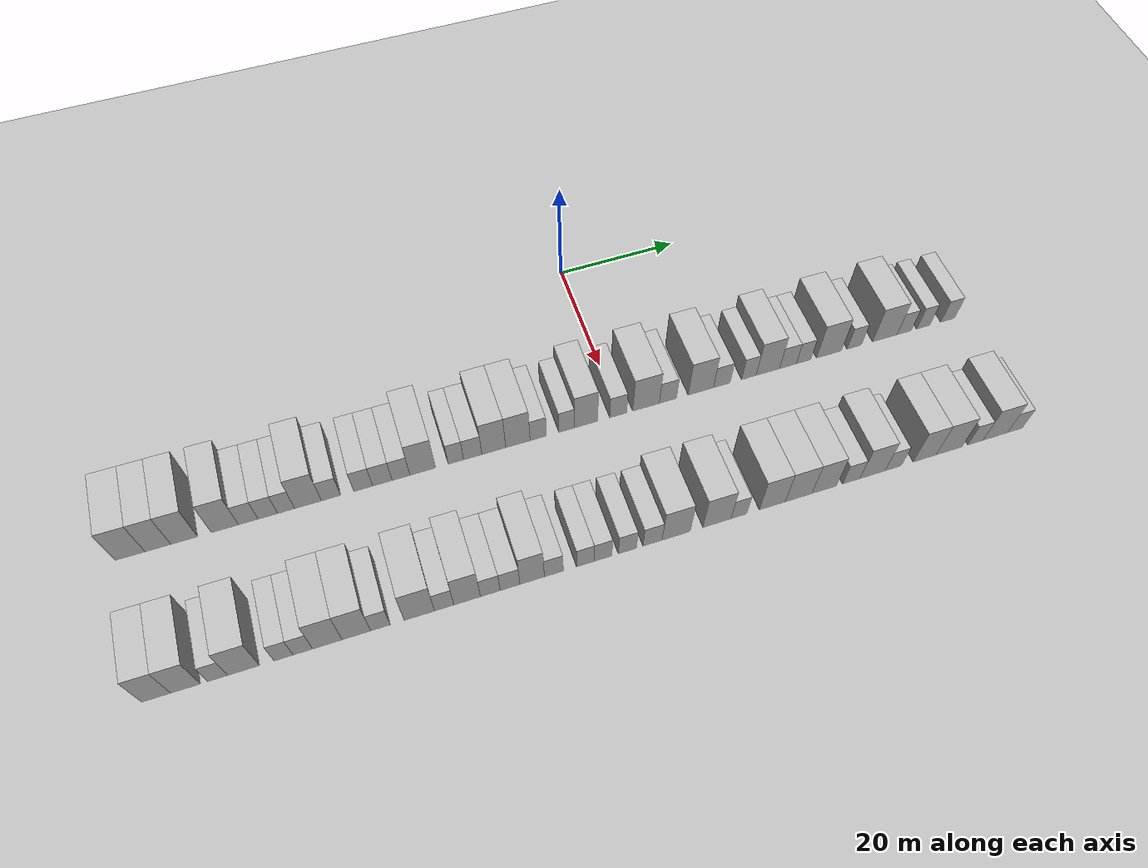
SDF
<sdf version="1.6">
 <world name="default">
  <include><name>ground_plane_1</name><uri>model://HANNAS_ground_plane</uri></include>
  <include>
   <name>ground_plane_2</name>
   <uri>model://HANNAS_ground_plane</uri>
   <pose>100 0 0  0 0 0</pose>
  </include>
  <model name="building_34">
   <static>1</static>
   <pose>25.0000 -75.3011 0 0.000000 0.000000 0.000000</pose>
   <link name="link">
    <pose>0 0 4.50 0 0 0</pose>
    <collision name="collision"><geometry><box><size>10.0000 4.2464 9.0000</size></box></geometry></collision>
    <visual name="visual">
     <cast_shadows>0</cast_shadows>
     <geometry><box><size>10.0000 4.2464 9.0000</size></box></geometry>
     <material>
      <script>
       <uri>model://HANNAS_wall/materials/scripts</uri>
       <uri>model://HANNAS_wall/materials/textures</uri>
       <name>vrc/HANNAS_wall</name>
      </script>
     </material>
    </visual>
   </link>
  </model>
  <model name="building_35">
   <static>1</static>
   <pose>25.0000 -71.3267 0 0.000000 0.000000 0.000000</pose>
   <link name="link">
    <pose>0 0 4.50 0 0 0</pose>
    <collision name="collision"><geometry><box><size>10.0000 3.7024 9.0000</size></box></geometry></collision>
    <visual name="visual">
     <cast_shadows>0</cast_shadows>
     <geometry><box><size>10.0000 3.7024 9.0000</size></box></geometry>
     <material>
      <script>
       <uri>model://HANNAS_wall/materials/scripts</uri>
       <uri>model://HANNAS_wall/materials/textures</uri>
       <name>vrc/HANNAS_wall</name>
      </script>
     </material>
    </visual>
   </link>
  </model>
  <model name="building_36">
   <static>1</static>
   <pose>25.0000 -67.5447 0 0.000000 0.000000 0.000000</pose>
   <link name="link">
    <pose>0 0 4.50 0 0 0</pose>
    <collision name="collision"><geometry><box><size>10.0000 3.8614 9.0000</size></box></geometry></collision>
    <visual name="visual">
     <cast_shadows>0</cast_shadows>
     <geometry><box><size>10.0000 3.8614 9.0000</size></box></geometry>
     <material>
      <script>
       <uri>model://HANNAS_wall/materials/scripts</uri>
       <uri>model://HANNAS_wall/materials/textures</uri>
       <name>vrc/HANNAS_wall</name>
      </script>
     </material>
    </visual>
   </link>
  </model>
  <model name="building_37">
   <static>1</static>
   <pose>25.0000 -61.6265 0 0.000000 0.000000 0.000000</pose>
   <link name="link">
    <pose>0 0 4.50 0 0 0</pose>
    <collision name="collision"><geometry><box><size>10.0000 3.9751 9.0000</size></box></geometry></collision>
    <visual name="visual">
     <cast_shadows>0</cast_shadows>
     <geometry><box><size>10.0000 3.9751 9.0000</size></box></geometry>
     <material>
      <script>
       <uri>model://HANNAS_wall/materials/scripts</uri>
       <uri>model://HANNAS_wall/materials/textures</uri>
       <name>vrc/HANNAS_wall</name>
      </script>
     </material>
    </visual>
   </link>
  </model>
  <model name="building_38">
   <static>1</static>
   <pose>25.0000 -58.1998 0 0.000000 0.000000 0.000000</pose>
   <link name="link">
    <pose>0 0 3.00 0 0 0</pose>
    <collision name="collision"><geometry><box><size>10.0000 2.8782 6.0000</size></box></geometry></collision>
    <visual name="visual">
     <cast_shadows>0</cast_shadows>
     <geometry><box><size>10.0000 2.8782 6.0000</size></box></geometry>
     <material>
      <script>
       <uri>model://HANNAS_wall/materials/scripts</uri>
       <uri>model://HANNAS_wall/materials/textures</uri>
       <name>vrc/HANNAS_wall</name>
      </script>
     </material>
    </visual>
   </link>
  </model>
  <model name="building_39">
   <static>1</static>
   <pose>25.0000 -55.3088 0 0.000000 0.000000 0.000000</pose>
   <link name="link">
    <pose>0 0 3.00 0 0 0</pose>
    <collision name="collision"><geometry><box><size>10.0000 2.9037 6.0000</size></box></geometry></collision>
    <visual name="visual">
     <cast_shadows>0</cast_shadows>
     <geometry><box><size>10.0000 2.9037 6.0000</size></box></geometry>
     <material>
      <script>
       <uri>model://HANNAS_wall/materials/scripts</uri>
       <uri>model://HANNAS_wall/materials/textures</uri>
       <name>vrc/HANNAS_wall</name>
      </script>
     </material>
    </visual>
   </link>
  </model>
  <model name="building_40">
   <static>1</static>
   <pose>25.0000 -52.5895 0 0.000000 0.000000 0.000000</pose>
   <link name="link">
    <pose>0 0 3.00 0 0 0</pose>
    <collision name="collision"><geometry><box><size>10.0000 2.5350 6.0000</size></box></geometry></collision>
    <visual name="visual">
     <cast_shadows>0</cast_shadows>
     <geometry><box><size>10.0000 2.5350 6.0000</size></box></geometry>
     <material>
      <script>
       <uri>model://HANNAS_wall/materials/scripts</uri>
       <uri>model://HANNAS_wall/materials/textures</uri>
       <name>vrc/HANNAS_wall</name>
      </script>
     </material>
    </visual>
   </link>
  </model>
  <model name="building_41">
   <static>1</static>
   <pose>25.0000 -49.3044 0 0.000000 0.000000 0.000000</pose>
   <link name="link">
    <pose>0 0 4.50 0 0 0</pose>
    <collision name="collision"><geometry><box><size>10.0000 4.0352 9.0000</size></box></geometry></collision>
    <visual name="visual">
     <cast_shadows>0</cast_shadows>
     <geometry><box><size>10.0000 4.0352 9.0000</size></box></geometry>
     <material>
      <script>
       <uri>model://HANNAS_wall/materials/scripts</uri>
       <uri>model://HANNAS_wall/materials/textures</uri>
       <name>vrc/HANNAS_wall</name>
      </script>
     </material>
    </visual>
   </link>
  </model>
  <model name="building_42">
   <static>1</static>
   <pose>25.0000 -45.8358 0 0.000000 0.000000 0.000000</pose>
   <link name="link">
    <pose>0 0 3.00 0 0 0</pose>
    <collision name="collision"><geometry><box><size>10.0000 2.9020 6.0000</size></box></geometry></collision>
    <visual name="visual">
     <cast_shadows>0</cast_shadows>
     <geometry><box><size>10.0000 2.9020 6.0000</size></box></geometry>
     <material>
      <script>
       <uri>model://HANNAS_wall/materials/scripts</uri>
       <uri>model://HANNAS_wall/materials/textures</uri>
       <name>vrc/HANNAS_wall</name>
      </script>
     </material>
    </visual>
   </link>
  </model>
  <model name="building_43">
   <static>1</static>
   <pose>25.0000 -40.9486 0 0.000000 0.000000 0.000000</pose>
   <link name="link">
    <pose>0 0 3.00 0 0 0</pose>
    <collision name="collision"><geometry><box><size>10.0000 2.8724 6.0000</size></box></geometry></collision>
    <visual name="visual">
     <cast_shadows>0</cast_shadows>
     <geometry><box><size>10.0000 2.8724 6.0000</size></box></geometry>
     <material>
      <script>
       <uri>model://HANNAS_wall/materials/scripts</uri>
       <uri>model://HANNAS_wall/materials/textures</uri>
       <name>vrc/HANNAS_wall</name>
      </script>
     </material>
    </visual>
   </link>
  </model>
  <model name="building_44">
   <static>1</static>
   <pose>25.0000 -38.0196 0 0.000000 0.000000 0.000000</pose>
   <link name="link">
    <pose>0 0 3.00 0 0 0</pose>
    <collision name="collision"><geometry><box><size>10.0000 2.9856 6.0000</size></box></geometry></collision>
    <visual name="visual">
     <cast_shadows>0</cast_shadows>
     <geometry><box><size>10.0000 2.9856 6.0000</size></box></geometry>
     <material>
      <script>
       <uri>model://HANNAS_wall/materials/scripts</uri>
       <uri>model://HANNAS_wall/materials/textures</uri>
       <name>vrc/HANNAS_wall</name>
      </script>
     </material>
    </visual>
   </link>
  </model>
  <model name="building_45">
   <static>1</static>
   <pose>25.0000 -35.1479 0 0.000000 0.000000 0.000000</pose>
   <link name="link">
    <pose>0 0 3.00 0 0 0</pose>
    <collision name="collision"><geometry><box><size>10.0000 2.7579 6.0000</size></box></geometry></collision>
    <visual name="visual">
     <cast_shadows>0</cast_shadows>
     <geometry><box><size>10.0000 2.7579 6.0000</size></box></geometry>
     <material>
      <script>
       <uri>model://HANNAS_wall/materials/scripts</uri>
       <uri>model://HANNAS_wall/materials/textures</uri>
       <name>vrc/HANNAS_wall</name>
      </script>
     </material>
    </visual>
   </link>
  </model>
  <model name="building_46">
   <static>1</static>
   <pose>25.0000 -31.7812 0 0.000000 0.000000 0.000000</pose>
   <link name="link">
    <pose>0 0 4.50 0 0 0</pose>
    <collision name="collision"><geometry><box><size>10.0000 3.9755 9.0000</size></box></geometry></collision>
    <visual name="visual">
     <cast_shadows>0</cast_shadows>
     <geometry><box><size>10.0000 3.9755 9.0000</size></box></geometry>
     <material>
      <script>
       <uri>model://HANNAS_wall/materials/scripts</uri>
       <uri>model://HANNAS_wall/materials/textures</uri>
       <name>vrc/HANNAS_wall</name>
      </script>
     </material>
    </visual>
   </link>
  </model>
  <model name="building_47">
   <static>1</static>
   <pose>25.0000 -26.5902 0 0.000000 0.000000 0.000000</pose>
   <link name="link">
    <pose>0 0 3.00 0 0 0</pose>
    <collision name="collision"><geometry><box><size>10.0000 2.4067 6.0000</size></box></geometry></collision>
    <visual name="visual">
     <cast_shadows>0</cast_shadows>
     <geometry><box><size>10.0000 2.4067 6.0000</size></box></geometry>
     <material>
      <script>
       <uri>model://HANNAS_wall/materials/scripts</uri>
       <uri>model://HANNAS_wall/materials/textures</uri>
       <name>vrc/HANNAS_wall</name>
      </script>
     </material>
    </visual>
   </link>
  </model>
  <model name="building_48">
   <static>1</static>
   <pose>25.0000 -23.9397 0 0.000000 0.000000 0.000000</pose>
   <link name="link">
    <pose>0 0 3.00 0 0 0</pose>
    <collision name="collision"><geometry><box><size>10.0000 2.8944 6.0000</size></box></geometry></collision>
    <visual name="visual">
     <cast_shadows>0</cast_shadows>
     <geometry><box><size>10.0000 2.8944 6.0000</size></box></geometry>
     <material>
      <script>
       <uri>model://HANNAS_wall/materials/scripts</uri>
       <uri>model://HANNAS_wall/materials/textures</uri>
       <name>vrc/HANNAS_wall</name>
      </script>
     </material>
    </visual>
   </link>
  </model>
  <model name="building_49">
   <static>1</static>
   <pose>25.0000 -20.5937 0 0.000000 0.000000 0.000000</pose>
   <link name="link">
    <pose>0 0 4.50 0 0 0</pose>
    <collision name="collision"><geometry><box><size>10.0000 3.7975 9.0000</size></box></geometry></collision>
    <visual name="visual">
     <cast_shadows>0</cast_shadows>
     <geometry><box><size>10.0000 3.7975 9.0000</size></box></geometry>
     <material>
      <script>
       <uri>model://HANNAS_wall/materials/scripts</uri>
       <uri>model://HANNAS_wall/materials/textures</uri>
       <name>vrc/HANNAS_wall</name>
      </script>
     </material>
    </visual>
   </link>
  </model>
  <model name="building_50">
   <static>1</static>
   <pose>25.0000 -16.7432 0 0.000000 0.000000 0.000000</pose>
   <link name="link">
    <pose>0 0 4.50 0 0 0</pose>
    <collision name="collision"><geometry><box><size>10.0000 3.9035 9.0000</size></box></geometry></collision>
    <visual name="visual">
     <cast_shadows>0</cast_shadows>
     <geometry><box><size>10.0000 3.9035 9.0000</size></box></geometry>
     <material>
      <script>
       <uri>model://HANNAS_wall/materials/scripts</uri>
       <uri>model://HANNAS_wall/materials/textures</uri>
       <name>vrc/HANNAS_wall</name>
      </script>
     </material>
    </visual>
   </link>
  </model>
  <model name="building_51">
   <static>1</static>
   <pose>25.0000 -13.4759 0 0.000000 0.000000 0.000000</pose>
   <link name="link">
    <pose>0 0 3.00 0 0 0</pose>
    <collision name="collision"><geometry><box><size>10.0000 2.6311 6.0000</size></box></geometry></collision>
    <visual name="visual">
     <cast_shadows>0</cast_shadows>
     <geometry><box><size>10.0000 2.6311 6.0000</size></box></geometry>
     <material>
      <script>
       <uri>model://HANNAS_wall/materials/scripts</uri>
       <uri>model://HANNAS_wall/materials/textures</uri>
       <name>vrc/HANNAS_wall</name>
      </script>
     </material>
    </visual>
   </link>
  </model>
  <model name="building_52">
   <static>1</static>
   <pose>25.0000 -8.8970 0 0.000000 0.000000 0.000000</pose>
   <link name="link">
    <pose>0 0 3.00 0 0 0</pose>
    <collision name="collision"><geometry><box><size>10.0000 2.5266 6.0000</size></box></geometry></collision>
    <visual name="visual">
     <cast_shadows>0</cast_shadows>
     <geometry><box><size>10.0000 2.5266 6.0000</size></box></geometry>
     <material>
      <script>
       <uri>model://HANNAS_wall/materials/scripts</uri>
       <uri>model://HANNAS_wall/materials/textures</uri>
       <name>vrc/HANNAS_wall</name>
      </script>
     </material>
    </visual>
   </link>
  </model>
  <model name="building_53">
   <static>1</static>
   <pose>25.0000 -5.7315 0 0.000000 0.000000 0.000000</pose>
   <link name="link">
    <pose>0 0 4.50 0 0 0</pose>
    <collision name="collision"><geometry><box><size>10.0000 3.8044 9.0000</size></box></geometry></collision>
    <visual name="visual">
     <cast_shadows>0</cast_shadows>
     <geometry><box><size>10.0000 3.8044 9.0000</size></box></geometry>
     <material>
      <script>
       <uri>model://HANNAS_wall/materials/scripts</uri>
       <uri>model://HANNAS_wall/materials/textures</uri>
       <name>vrc/HANNAS_wall</name>
      </script>
     </material>
    </visual>
   </link>
  </model>
  <model name="building_54">
   <static>1</static>
   <pose>25.0000 -0.4231 0 0.000000 0.000000 0.000000</pose>
   <link name="link">
    <pose>0 0 3.00 0 0 0</pose>
    <collision name="collision"><geometry><box><size>10.0000 2.8125 6.0000</size></box></geometry></collision>
    <visual name="visual">
     <cast_shadows>0</cast_shadows>
     <geometry><box><size>10.0000 2.8125 6.0000</size></box></geometry>
     <material>
      <script>
       <uri>model://HANNAS_wall/materials/scripts</uri>
       <uri>model://HANNAS_wall/materials/textures</uri>
       <name>vrc/HANNAS_wall</name>
      </script>
     </material>
    </visual>
   </link>
  </model>
  <model name="building_55">
   <static>1</static>
   <pose>25.0000 4.2093 0 0.000000 0.000000 0.000000</pose>
   <link name="link">
    <pose>0 0 4.50 0 0 0</pose>
    <collision name="collision"><geometry><box><size>10.0000 4.4522 9.0000</size></box></geometry></collision>
    <visual name="visual">
     <cast_shadows>0</cast_shadows>
     <geometry><box><size>10.0000 4.4522 9.0000</size></box></geometry>
     <material>
      <script>
       <uri>model://HANNAS_wall/materials/scripts</uri>
       <uri>model://HANNAS_wall/materials/textures</uri>
       <name>vrc/HANNAS_wall</name>
      </script>
     </material>
    </visual>
   </link>
  </model>
  <model name="building_56">
   <static>1</static>
   <pose>25.0000 7.8749 0 0.000000 0.000000 0.000000</pose>
   <link name="link">
    <pose>0 0 3.00 0 0 0</pose>
    <collision name="collision"><geometry><box><size>10.0000 2.8789 6.0000</size></box></geometry></collision>
    <visual name="visual">
     <cast_shadows>0</cast_shadows>
     <geometry><box><size>10.0000 2.8789 6.0000</size></box></geometry>
     <material>
      <script>
       <uri>model://HANNAS_wall/materials/scripts</uri>
       <uri>model://HANNAS_wall/materials/textures</uri>
       <name>vrc/HANNAS_wall</name>
      </script>
     </material>
    </visual>
   </link>
  </model>
  <model name="building_57">
   <static>1</static>
   <pose>25.0000 13.4722 0 0.000000 0.000000 0.000000</pose>
   <link name="link">
    <pose>0 0 4.50 0 0 0</pose>
    <collision name="collision"><geometry><box><size>10.0000 4.3157 9.0000</size></box></geometry></collision>
    <visual name="visual">
     <cast_shadows>0</cast_shadows>
     <geometry><box><size>10.0000 4.3157 9.0000</size></box></geometry>
     <material>
      <script>
       <uri>model://HANNAS_wall/materials/scripts</uri>
       <uri>model://HANNAS_wall/materials/textures</uri>
       <name>vrc/HANNAS_wall</name>
      </script>
     </material>
    </visual>
   </link>
  </model>
  <model name="building_58">
   <static>1</static>
   <pose>25.0000 17.0487 0 0.000000 0.000000 0.000000</pose>
   <link name="link">
    <pose>0 0 3.00 0 0 0</pose>
    <collision name="collision"><geometry><box><size>10.0000 2.8374 6.0000</size></box></geometry></collision>
    <visual name="visual">
     <cast_shadows>0</cast_shadows>
     <geometry><box><size>10.0000 2.8374 6.0000</size></box></geometry>
     <material>
      <script>
       <uri>model://HANNAS_wall/materials/scripts</uri>
       <uri>model://HANNAS_wall/materials/textures</uri>
       <name>vrc/HANNAS_wall</name>
      </script>
     </material>
    </visual>
   </link>
  </model>
  <model name="building_59">
   <static>1</static>
   <pose>25.0000 21.7170 0 0.000000 0.000000 0.000000</pose>
   <link name="link">
    <pose>0 0 3.00 0 0 0</pose>
    <collision name="collision"><geometry><box><size>10.0000 2.4991 6.0000</size></box></geometry></collision>
    <visual name="visual">
     <cast_shadows>0</cast_shadows>
     <geometry><box><size>10.0000 2.4991 6.0000</size></box></geometry>
     <material>
      <script>
       <uri>model://HANNAS_wall/materials/scripts</uri>
       <uri>model://HANNAS_wall/materials/textures</uri>
       <name>vrc/HANNAS_wall</name>
      </script>
     </material>
    </visual>
   </link>
  </model>
  <model name="building_60">
   <static>1</static>
   <pose>25.0000 25.0026 0 0.000000 0.000000 0.000000</pose>
   <link name="link">
    <pose>0 0 4.50 0 0 0</pose>
    <collision name="collision"><geometry><box><size>10.0000 4.0722 9.0000</size></box></geometry></collision>
    <visual name="visual">
     <cast_shadows>0</cast_shadows>
     <geometry><box><size>10.0000 4.0722 9.0000</size></box></geometry>
     <material>
      <script>
       <uri>model://HANNAS_wall/materials/scripts</uri>
       <uri>model://HANNAS_wall/materials/textures</uri>
       <name>vrc/HANNAS_wall</name>
      </script>
     </material>
    </visual>
   </link>
  </model>
  <model name="building_61">
   <static>1</static>
   <pose>25.0000 28.5138 0 0.000000 0.000000 0.000000</pose>
   <link name="link">
    <pose>0 0 3.00 0 0 0</pose>
    <collision name="collision"><geometry><box><size>10.0000 2.9501 6.0000</size></box></geometry></collision>
    <visual name="visual">
     <cast_shadows>0</cast_shadows>
     <geometry><box><size>10.0000 2.9501 6.0000</size></box></geometry>
     <material>
      <script>
       <uri>model://HANNAS_wall/materials/scripts</uri>
       <uri>model://HANNAS_wall/materials/textures</uri>
       <name>vrc/HANNAS_wall</name>
      </script>
     </material>
    </visual>
   </link>
  </model>
  <model name="building_62">
   <static>1</static>
   <pose>25.0000 31.2584 0 0.000000 0.000000 0.000000</pose>
   <link name="link">
    <pose>0 0 3.00 0 0 0</pose>
    <collision name="collision"><geometry><box><size>10.0000 2.5391 6.0000</size></box></geometry></collision>
    <visual name="visual">
     <cast_shadows>0</cast_shadows>
     <geometry><box><size>10.0000 2.5391 6.0000</size></box></geometry>
     <material>
      <script>
       <uri>model://HANNAS_wall/materials/scripts</uri>
       <uri>model://HANNAS_wall/materials/textures</uri>
       <name>vrc/HANNAS_wall</name>
      </script>
     </material>
    </visual>
   </link>
  </model>
  <model name="building_63">
   <static>1</static>
   <pose>25.0000 35.7606 0 0.000000 0.000000 0.000000</pose>
   <link name="link">
    <pose>0 0 4.50 0 0 0</pose>
    <collision name="collision"><geometry><box><size>10.0000 4.4652 9.0000</size></box></geometry></collision>
    <visual name="visual">
     <cast_shadows>0</cast_shadows>
     <geometry><box><size>10.0000 4.4652 9.0000</size></box></geometry>
     <material>
      <script>
       <uri>model://HANNAS_wall/materials/scripts</uri>
       <uri>model://HANNAS_wall/materials/textures</uri>
       <name>vrc/HANNAS_wall</name>
      </script>
     </material>
    </visual>
   </link>
  </model>
  <model name="building_64">
   <static>1</static>
   <pose>25.0000 40.2761 0 0.000000 0.000000 0.000000</pose>
   <link name="link">
    <pose>0 0 3.00 0 0 0</pose>
    <collision name="collision"><geometry><box><size>10.0000 2.5658 6.0000</size></box></geometry></collision>
    <visual name="visual">
     <cast_shadows>0</cast_shadows>
     <geometry><box><size>10.0000 2.5658 6.0000</size></box></geometry>
     <material>
      <script>
       <uri>model://HANNAS_wall/materials/scripts</uri>
       <uri>model://HANNAS_wall/materials/textures</uri>
       <name>vrc/HANNAS_wall</name>
      </script>
     </material>
    </visual>
   </link>
  </model>
  <model name="building_65">
   <static>1</static>
   <pose>25.0000 45.7826 0 0.000000 0.000000 0.000000</pose>
   <link name="link">
    <pose>0 0 4.50 0 0 0</pose>
    <collision name="collision"><geometry><box><size>10.0000 4.4473 9.0000</size></box></geometry></collision>
    <visual name="visual">
     <cast_shadows>0</cast_shadows>
     <geometry><box><size>10.0000 4.4473 9.0000</size></box></geometry>
     <material>
      <script>
       <uri>model://HANNAS_wall/materials/scripts</uri>
       <uri>model://HANNAS_wall/materials/textures</uri>
       <name>vrc/HANNAS_wall</name>
      </script>
     </material>
    </visual>
   </link>
  </model>
  <model name="building_66">
   <static>1</static>
   <pose>25.0000 49.3003 0 0.000000 0.000000 0.000000</pose>
   <link name="link">
    <pose>0 0 3.00 0 0 0</pose>
    <collision name="collision"><geometry><box><size>10.0000 2.5882 6.0000</size></box></geometry></collision>
    <visual name="visual">
     <cast_shadows>0</cast_shadows>
     <geometry><box><size>10.0000 2.5882 6.0000</size></box></geometry>
     <material>
      <script>
       <uri>model://HANNAS_wall/materials/scripts</uri>
       <uri>model://HANNAS_wall/materials/textures</uri>
       <name>vrc/HANNAS_wall</name>
      </script>
     </material>
    </visual>
   </link>
  </model>
  <model name="building_67">
   <static>1</static>
   <pose>25.0000 52.7981 0 0.000000 0.000000 0.000000</pose>
   <link name="link">
    <pose>0 0 3.00 0 0 0</pose>
    <collision name="collision"><geometry><box><size>10.0000 2.4072 6.0000</size></box></geometry></collision>
    <visual name="visual">
     <cast_shadows>0</cast_shadows>
     <geometry><box><size>10.0000 2.4072 6.0000</size></box></geometry>
     <material>
      <script>
       <uri>model://HANNAS_wall/materials/scripts</uri>
       <uri>model://HANNAS_wall/materials/textures</uri>
       <name>vrc/HANNAS_wall</name>
      </script>
     </material>
    </visual>
   </link>
  </model>
  <model name="building_68">
   <static>1</static>
   <pose>25.0000 57.2887 0 0.000000 0.000000 0.000000</pose>
   <link name="link">
    <pose>0 0 3.00 0 0 0</pose>
    <collision name="collision"><geometry><box><size>10.0000 2.5740 6.0000</size></box></geometry></collision>
    <visual name="visual">
     <cast_shadows>0</cast_shadows>
     <geometry><box><size>10.0000 2.5740 6.0000</size></box></geometry>
     <material>
      <script>
       <uri>model://HANNAS_wall/materials/scripts</uri>
       <uri>model://HANNAS_wall/materials/textures</uri>
       <name>vrc/HANNAS_wall</name>
      </script>
     </material>
    </visual>
   </link>
  </model>
  <model name="building_143">
   <static>1</static>
   <pose>47.0000 -74.2604 0 0.000000 0.000000 0.000000</pose>
   <link name="link">
    <pose>0 0 4.50 0 0 0</pose>
    <collision name="collision"><geometry><box><size>10.0000 3.8609 9.0000</size></box></geometry></collision>
    <visual name="visual">
     <cast_shadows>0</cast_shadows>
     <geometry><box><size>10.0000 3.8609 9.0000</size></box></geometry>
     <material>
      <script>
       <uri>model://HANNAS_wall/materials/scripts</uri>
       <uri>model://HANNAS_wall/materials/textures</uri>
       <name>vrc/HANNAS_wall</name>
      </script>
     </material>
    </visual>
   </link>
  </model>
  <model name="building_144">
   <static>1</static>
   <pose>47.0000 -70.3363 0 0.000000 0.000000 0.000000</pose>
   <link name="link">
    <pose>0 0 4.50 0 0 0</pose>
    <collision name="collision"><geometry><box><size>10.0000 3.9872 9.0000</size></box></geometry></collision>
    <visual name="visual">
     <cast_shadows>0</cast_shadows>
     <geometry><box><size>10.0000 3.9872 9.0000</size></box></geometry>
     <material>
      <script>
       <uri>model://HANNAS_wall/materials/scripts</uri>
       <uri>model://HANNAS_wall/materials/textures</uri>
       <name>vrc/HANNAS_wall</name>
      </script>
     </material>
    </visual>
   </link>
  </model>
  <model name="building_145">
   <static>1</static>
   <pose>47.0000 -66.0009 0 0.000000 0.000000 0.000000</pose>
   <link name="link">
    <pose>0 0 3.00 0 0 0</pose>
    <collision name="collision"><geometry><box><size>10.0000 2.6835 6.0000</size></box></geometry></collision>
    <visual name="visual">
     <cast_shadows>0</cast_shadows>
     <geometry><box><size>10.0000 2.6835 6.0000</size></box></geometry>
     <material>
      <script>
       <uri>model://HANNAS_wall/materials/scripts</uri>
       <uri>model://HANNAS_wall/materials/textures</uri>
       <name>vrc/HANNAS_wall</name>
      </script>
     </material>
    </visual>
   </link>
  </model>
  <model name="building_146">
   <static>1</static>
   <pose>47.0000 -62.4841 0 0.000000 0.000000 0.000000</pose>
   <link name="link">
    <pose>0 0 4.50 0 0 0</pose>
    <collision name="collision"><geometry><box><size>10.0000 4.3500 9.0000</size></box></geometry></collision>
    <visual name="visual">
     <cast_shadows>0</cast_shadows>
     <geometry><box><size>10.0000 4.3500 9.0000</size></box></geometry>
     <material>
      <script>
       <uri>model://HANNAS_wall/materials/scripts</uri>
       <uri>model://HANNAS_wall/materials/textures</uri>
       <name>vrc/HANNAS_wall</name>
      </script>
     </material>
    </visual>
   </link>
  </model>
  <model name="building_147">
   <static>1</static>
   <pose>47.0000 -56.9892 0 0.000000 0.000000 0.000000</pose>
   <link name="link">
    <pose>0 0 3.00 0 0 0</pose>
    <collision name="collision"><geometry><box><size>10.0000 2.6399 6.0000</size></box></geometry></collision>
    <visual name="visual">
     <cast_shadows>0</cast_shadows>
     <geometry><box><size>10.0000 2.6399 6.0000</size></box></geometry>
     <material>
      <script>
       <uri>model://HANNAS_wall/materials/scripts</uri>
       <uri>model://HANNAS_wall/materials/textures</uri>
       <name>vrc/HANNAS_wall</name>
      </script>
     </material>
    </visual>
   </link>
  </model>
  <model name="building_148">
   <static>1</static>
   <pose>47.0000 -54.3130 0 0.000000 0.000000 0.000000</pose>
   <link name="link">
    <pose>0 0 3.00 0 0 0</pose>
    <collision name="collision"><geometry><box><size>10.0000 2.7123 6.0000</size></box></geometry></collision>
    <visual name="visual">
     <cast_shadows>0</cast_shadows>
     <geometry><box><size>10.0000 2.7123 6.0000</size></box></geometry>
     <material>
      <script>
       <uri>model://HANNAS_wall/materials/scripts</uri>
       <uri>model://HANNAS_wall/materials/textures</uri>
       <name>vrc/HANNAS_wall</name>
      </script>
     </material>
    </visual>
   </link>
  </model>
  <model name="building_149">
   <static>1</static>
   <pose>47.0000 -50.8953 0 0.000000 0.000000 0.000000</pose>
   <link name="link">
    <pose>0 0 4.50 0 0 0</pose>
    <collision name="collision"><geometry><box><size>10.0000 4.1231 9.0000</size></box></geometry></collision>
    <visual name="visual">
     <cast_shadows>0</cast_shadows>
     <geometry><box><size>10.0000 4.1231 9.0000</size></box></geometry>
     <material>
      <script>
       <uri>model://HANNAS_wall/materials/scripts</uri>
       <uri>model://HANNAS_wall/materials/textures</uri>
       <name>vrc/HANNAS_wall</name>
      </script>
     </material>
    </visual>
   </link>
  </model>
  <model name="building_150">
   <static>1</static>
   <pose>47.0000 -46.8084 0 0.000000 0.000000 0.000000</pose>
   <link name="link">
    <pose>0 0 4.50 0 0 0</pose>
    <collision name="collision"><geometry><box><size>10.0000 4.0507 9.0000</size></box></geometry></collision>
    <visual name="visual">
     <cast_shadows>0</cast_shadows>
     <geometry><box><size>10.0000 4.0507 9.0000</size></box></geometry>
     <material>
      <script>
       <uri>model://HANNAS_wall/materials/scripts</uri>
       <uri>model://HANNAS_wall/materials/textures</uri>
       <name>vrc/HANNAS_wall</name>
      </script>
     </material>
    </visual>
   </link>
  </model>
  <model name="building_151">
   <static>1</static>
   <pose>47.0000 -43.4008 0 0.000000 0.000000 0.000000</pose>
   <link name="link">
    <pose>0 0 3.00 0 0 0</pose>
    <collision name="collision"><geometry><box><size>10.0000 2.7646 6.0000</size></box></geometry></collision>
    <visual name="visual">
     <cast_shadows>0</cast_shadows>
     <geometry><box><size>10.0000 2.7646 6.0000</size></box></geometry>
     <material>
      <script>
       <uri>model://HANNAS_wall/materials/scripts</uri>
       <uri>model://HANNAS_wall/materials/textures</uri>
       <name>vrc/HANNAS_wall</name>
      </script>
     </material>
    </visual>
   </link>
  </model>
  <model name="building_152">
   <static>1</static>
   <pose>47.0000 -37.8311 0 0.000000 0.000000 0.000000</pose>
   <link name="link">
    <pose>0 0 4.50 0 0 0</pose>
    <collision name="collision"><geometry><box><size>10.0000 4.3747 9.0000</size></box></geometry></collision>
    <visual name="visual">
     <cast_shadows>0</cast_shadows>
     <geometry><box><size>10.0000 4.3747 9.0000</size></box></geometry>
     <material>
      <script>
       <uri>model://HANNAS_wall/materials/scripts</uri>
       <uri>model://HANNAS_wall/materials/textures</uri>
       <name>vrc/HANNAS_wall</name>
      </script>
     </material>
    </visual>
   </link>
  </model>
  <model name="building_153">
   <static>1</static>
   <pose>47.0000 -34.2461 0 0.000000 0.000000 0.000000</pose>
   <link name="link">
    <pose>0 0 3.00 0 0 0</pose>
    <collision name="collision"><geometry><box><size>10.0000 2.7953 6.0000</size></box></geometry></collision>
    <visual name="visual">
     <cast_shadows>0</cast_shadows>
     <geometry><box><size>10.0000 2.7953 6.0000</size></box></geometry>
     <material>
      <script>
       <uri>model://HANNAS_wall/materials/scripts</uri>
       <uri>model://HANNAS_wall/materials/textures</uri>
       <name>vrc/HANNAS_wall</name>
      </script>
     </material>
    </visual>
   </link>
  </model>
  <model name="building_154">
   <static>1</static>
   <pose>47.0000 -30.9100 0 0.000000 0.000000 0.000000</pose>
   <link name="link">
    <pose>0 0 4.50 0 0 0</pose>
    <collision name="collision"><geometry><box><size>10.0000 3.8769 9.0000</size></box></geometry></collision>
    <visual name="visual">
     <cast_shadows>0</cast_shadows>
     <geometry><box><size>10.0000 3.8769 9.0000</size></box></geometry>
     <material>
      <script>
       <uri>model://HANNAS_wall/materials/scripts</uri>
       <uri>model://HANNAS_wall/materials/textures</uri>
       <name>vrc/HANNAS_wall</name>
      </script>
     </material>
    </visual>
   </link>
  </model>
  <model name="building_155">
   <static>1</static>
   <pose>47.0000 -27.5129 0 0.000000 0.000000 0.000000</pose>
   <link name="link">
    <pose>0 0 3.00 0 0 0</pose>
    <collision name="collision"><geometry><box><size>10.0000 2.9173 6.0000</size></box></geometry></collision>
    <visual name="visual">
     <cast_shadows>0</cast_shadows>
     <geometry><box><size>10.0000 2.9173 6.0000</size></box></geometry>
     <material>
      <script>
       <uri>model://HANNAS_wall/materials/scripts</uri>
       <uri>model://HANNAS_wall/materials/textures</uri>
       <name>vrc/HANNAS_wall</name>
      </script>
     </material>
    </visual>
   </link>
  </model>
  <model name="building_156">
   <static>1</static>
   <pose>47.0000 -24.5942 0 0.000000 0.000000 0.000000</pose>
   <link name="link">
    <pose>0 0 3.00 0 0 0</pose>
    <collision name="collision"><geometry><box><size>10.0000 2.9202 6.0000</size></box></geometry></collision>
    <visual name="visual">
     <cast_shadows>0</cast_shadows>
     <geometry><box><size>10.0000 2.9202 6.0000</size></box></geometry>
     <material>
      <script>
       <uri>model://HANNAS_wall/materials/scripts</uri>
       <uri>model://HANNAS_wall/materials/textures</uri>
       <name>vrc/HANNAS_wall</name>
      </script>
     </material>
    </visual>
   </link>
  </model>
  <model name="building_157">
   <static>1</static>
   <pose>47.0000 -21.3063 0 0.000000 0.000000 0.000000</pose>
   <link name="link">
    <pose>0 0 4.50 0 0 0</pose>
    <collision name="collision"><geometry><box><size>10.0000 3.6556 9.0000</size></box></geometry></collision>
    <visual name="visual">
     <cast_shadows>0</cast_shadows>
     <geometry><box><size>10.0000 3.6556 9.0000</size></box></geometry>
     <material>
      <script>
       <uri>model://HANNAS_wall/materials/scripts</uri>
       <uri>model://HANNAS_wall/materials/textures</uri>
       <name>vrc/HANNAS_wall</name>
      </script>
     </material>
    </visual>
   </link>
  </model>
  <model name="building_158">
   <static>1</static>
   <pose>47.0000 -18.0610 0 0.000000 0.000000 0.000000</pose>
   <link name="link">
    <pose>0 0 3.00 0 0 0</pose>
    <collision name="collision"><geometry><box><size>10.0000 2.8350 6.0000</size></box></geometry></collision>
    <visual name="visual">
     <cast_shadows>0</cast_shadows>
     <geometry><box><size>10.0000 2.8350 6.0000</size></box></geometry>
     <material>
      <script>
       <uri>model://HANNAS_wall/materials/scripts</uri>
       <uri>model://HANNAS_wall/materials/textures</uri>
       <name>vrc/HANNAS_wall</name>
      </script>
     </material>
    </visual>
   </link>
  </model>
  <model name="building_159">
   <static>1</static>
   <pose>47.0000 -13.3137 0 0.000000 0.000000 0.000000</pose>
   <link name="link">
    <pose>0 0 3.00 0 0 0</pose>
    <collision name="collision"><geometry><box><size>10.0000 2.6597 6.0000</size></box></geometry></collision>
    <visual name="visual">
     <cast_shadows>0</cast_shadows>
     <geometry><box><size>10.0000 2.6597 6.0000</size></box></geometry>
     <material>
      <script>
       <uri>model://HANNAS_wall/materials/scripts</uri>
       <uri>model://HANNAS_wall/materials/textures</uri>
       <name>vrc/HANNAS_wall</name>
      </script>
     </material>
    </visual>
   </link>
  </model>
  <model name="building_160">
   <static>1</static>
   <pose>47.0000 -10.6242 0 0.000000 0.000000 0.000000</pose>
   <link name="link">
    <pose>0 0 3.00 0 0 0</pose>
    <collision name="collision"><geometry><box><size>10.0000 2.7192 6.0000</size></box></geometry></collision>
    <visual name="visual">
     <cast_shadows>0</cast_shadows>
     <geometry><box><size>10.0000 2.7192 6.0000</size></box></geometry>
     <material>
      <script>
       <uri>model://HANNAS_wall/materials/scripts</uri>
       <uri>model://HANNAS_wall/materials/textures</uri>
       <name>vrc/HANNAS_wall</name>
      </script>
     </material>
    </visual>
   </link>
  </model>
  <model name="building_161">
   <static>1</static>
   <pose>47.0000 -6.8645 0 0.000000 0.000000 0.000000</pose>
   <link name="link">
    <pose>0 0 3.00 0 0 0</pose>
    <collision name="collision"><geometry><box><size>10.0000 2.8003 6.0000</size></box></geometry></collision>
    <visual name="visual">
     <cast_shadows>0</cast_shadows>
     <geometry><box><size>10.0000 2.8003 6.0000</size></box></geometry>
     <material>
      <script>
       <uri>model://HANNAS_wall/materials/scripts</uri>
       <uri>model://HANNAS_wall/materials/textures</uri>
       <name>vrc/HANNAS_wall</name>
      </script>
     </material>
    </visual>
   </link>
  </model>
  <model name="building_162">
   <static>1</static>
   <pose>47.0000 -2.9794 0 0.000000 0.000000 0.000000</pose>
   <link name="link">
    <pose>0 0 3.00 0 0 0</pose>
    <collision name="collision"><geometry><box><size>10.0000 2.9698 6.0000</size></box></geometry></collision>
    <visual name="visual">
     <cast_shadows>0</cast_shadows>
     <geometry><box><size>10.0000 2.9698 6.0000</size></box></geometry>
     <material>
      <script>
       <uri>model://HANNAS_wall/materials/scripts</uri>
       <uri>model://HANNAS_wall/materials/textures</uri>
       <name>vrc/HANNAS_wall</name>
      </script>
     </material>
    </visual>
   </link>
  </model>
  <model name="building_163">
   <static>1</static>
   <pose>47.0000 0.7090 0 0.000000 0.000000 0.000000</pose>
   <link name="link">
    <pose>0 0 4.50 0 0 0</pose>
    <collision name="collision"><geometry><box><size>10.0000 4.4070 9.0000</size></box></geometry></collision>
    <visual name="visual">
     <cast_shadows>0</cast_shadows>
     <geometry><box><size>10.0000 4.4070 9.0000</size></box></geometry>
     <material>
      <script>
       <uri>model://HANNAS_wall/materials/scripts</uri>
       <uri>model://HANNAS_wall/materials/textures</uri>
       <name>vrc/HANNAS_wall</name>
      </script>
     </material>
    </visual>
   </link>
  </model>
  <model name="building_164">
   <static>1</static>
   <pose>47.0000 7.1466 0 0.000000 0.000000 0.000000</pose>
   <link name="link">
    <pose>0 0 4.50 0 0 0</pose>
    <collision name="collision"><geometry><box><size>10.0000 4.4683 9.0000</size></box></geometry></collision>
    <visual name="visual">
     <cast_shadows>0</cast_shadows>
     <geometry><box><size>10.0000 4.4683 9.0000</size></box></geometry>
     <material>
      <script>
       <uri>model://HANNAS_wall/materials/scripts</uri>
       <uri>model://HANNAS_wall/materials/textures</uri>
       <name>vrc/HANNAS_wall</name>
      </script>
     </material>
    </visual>
   </link>
  </model>
  <model name="building_165">
   <static>1</static>
   <pose>47.0000 10.6448 0 0.000000 0.000000 0.000000</pose>
   <link name="link">
    <pose>0 0 3.00 0 0 0</pose>
    <collision name="collision"><geometry><box><size>10.0000 2.5281 6.0000</size></box></geometry></collision>
    <visual name="visual">
     <cast_shadows>0</cast_shadows>
     <geometry><box><size>10.0000 2.5281 6.0000</size></box></geometry>
     <material>
      <script>
       <uri>model://HANNAS_wall/materials/scripts</uri>
       <uri>model://HANNAS_wall/materials/textures</uri>
       <name>vrc/HANNAS_wall</name>
      </script>
     </material>
    </visual>
   </link>
  </model>
  <model name="building_166">
   <static>1</static>
   <pose>47.0000 16.0026 0 0.000000 0.000000 0.000000</pose>
   <link name="link">
    <pose>0 0 4.50 0 0 0</pose>
    <collision name="collision"><geometry><box><size>10.0000 4.1875 9.0000</size></box></geometry></collision>
    <visual name="visual">
     <cast_shadows>0</cast_shadows>
     <geometry><box><size>10.0000 4.1875 9.0000</size></box></geometry>
     <material>
      <script>
       <uri>model://HANNAS_wall/materials/scripts</uri>
       <uri>model://HANNAS_wall/materials/textures</uri>
       <name>vrc/HANNAS_wall</name>
      </script>
     </material>
    </visual>
   </link>
  </model>
  <model name="building_167">
   <static>1</static>
   <pose>47.0000 20.2825 0 0.000000 0.000000 0.000000</pose>
   <link name="link">
    <pose>0 0 4.50 0 0 0</pose>
    <collision name="collision"><geometry><box><size>10.0000 4.3724 9.0000</size></box></geometry></collision>
    <visual name="visual">
     <cast_shadows>0</cast_shadows>
     <geometry><box><size>10.0000 4.3724 9.0000</size></box></geometry>
     <material>
      <script>
       <uri>model://HANNAS_wall/materials/scripts</uri>
       <uri>model://HANNAS_wall/materials/textures</uri>
       <name>vrc/HANNAS_wall</name>
      </script>
     </material>
    </visual>
   </link>
  </model>
  <model name="building_168">
   <static>1</static>
   <pose>47.0000 24.4779 0 0.000000 0.000000 0.000000</pose>
   <link name="link">
    <pose>0 0 4.50 0 0 0</pose>
    <collision name="collision"><geometry><box><size>10.0000 4.0185 9.0000</size></box></geometry></collision>
    <visual name="visual">
     <cast_shadows>0</cast_shadows>
     <geometry><box><size>10.0000 4.0185 9.0000</size></box></geometry>
     <material>
      <script>
       <uri>model://HANNAS_wall/materials/scripts</uri>
       <uri>model://HANNAS_wall/materials/textures</uri>
       <name>vrc/HANNAS_wall</name>
      </script>
     </material>
    </visual>
   </link>
  </model>
  <model name="building_169">
   <static>1</static>
   <pose>47.0000 28.9298 0 0.000000 0.000000 0.000000</pose>
   <link name="link">
    <pose>0 0 3.00 0 0 0</pose>
    <collision name="collision"><geometry><box><size>10.0000 2.8852 6.0000</size></box></geometry></collision>
    <visual name="visual">
     <cast_shadows>0</cast_shadows>
     <geometry><box><size>10.0000 2.8852 6.0000</size></box></geometry>
     <material>
      <script>
       <uri>model://HANNAS_wall/materials/scripts</uri>
       <uri>model://HANNAS_wall/materials/textures</uri>
       <name>vrc/HANNAS_wall</name>
      </script>
     </material>
    </visual>
   </link>
  </model>
  <model name="building_170">
   <static>1</static>
   <pose>47.0000 32.4832 0 0.000000 0.000000 0.000000</pose>
   <link name="link">
    <pose>0 0 4.50 0 0 0</pose>
    <collision name="collision"><geometry><box><size>10.0000 4.2218 9.0000</size></box></geometry></collision>
    <visual name="visual">
     <cast_shadows>0</cast_shadows>
     <geometry><box><size>10.0000 4.2218 9.0000</size></box></geometry>
     <material>
      <script>
       <uri>model://HANNAS_wall/materials/scripts</uri>
       <uri>model://HANNAS_wall/materials/textures</uri>
       <name>vrc/HANNAS_wall</name>
      </script>
     </material>
    </visual>
   </link>
  </model>
  <model name="building_171">
   <static>1</static>
   <pose>47.0000 35.9634 0 0.000000 0.000000 0.000000</pose>
   <link name="link">
    <pose>0 0 3.00 0 0 0</pose>
    <collision name="collision"><geometry><box><size>10.0000 2.7386 6.0000</size></box></geometry></collision>
    <visual name="visual">
     <cast_shadows>0</cast_shadows>
     <geometry><box><size>10.0000 2.7386 6.0000</size></box></geometry>
     <material>
      <script>
       <uri>model://HANNAS_wall/materials/scripts</uri>
       <uri>model://HANNAS_wall/materials/textures</uri>
       <name>vrc/HANNAS_wall</name>
      </script>
     </material>
    </visual>
   </link>
  </model>
  <model name="building_172">
   <static>1</static>
   <pose>47.0000 41.2793 0 0.000000 0.000000 0.000000</pose>
   <link name="link">
    <pose>0 0 4.50 0 0 0</pose>
    <collision name="collision"><geometry><box><size>10.0000 3.8931 9.0000</size></box></geometry></collision>
    <visual name="visual">
     <cast_shadows>0</cast_shadows>
     <geometry><box><size>10.0000 3.8931 9.0000</size></box></geometry>
     <material>
      <script>
       <uri>model://HANNAS_wall/materials/scripts</uri>
       <uri>model://HANNAS_wall/materials/textures</uri>
       <name>vrc/HANNAS_wall</name>
      </script>
     </material>
    </visual>
   </link>
  </model>
  <model name="building_173">
   <static>1</static>
   <pose>47.0000 45.4541 0 0.000000 0.000000 0.000000</pose>
   <link name="link">
    <pose>0 0 4.50 0 0 0</pose>
    <collision name="collision"><geometry><box><size>10.0000 4.4567 9.0000</size></box></geometry></collision>
    <visual name="visual">
     <cast_shadows>0</cast_shadows>
     <geometry><box><size>10.0000 4.4567 9.0000</size></box></geometry>
     <material>
      <script>
       <uri>model://HANNAS_wall/materials/scripts</uri>
       <uri>model://HANNAS_wall/materials/textures</uri>
       <name>vrc/HANNAS_wall</name>
      </script>
     </material>
    </visual>
   </link>
  </model>
  <model name="building_174">
   <static>1</static>
   <pose>47.0000 50.0059 0 0.000000 0.000000 0.000000</pose>
   <link name="link">
    <pose>0 0 3.00 0 0 0</pose>
    <collision name="collision"><geometry><box><size>10.0000 2.6469 6.0000</size></box></geometry></collision>
    <visual name="visual">
     <cast_shadows>0</cast_shadows>
     <geometry><box><size>10.0000 2.6469 6.0000</size></box></geometry>
     <material>
      <script>
       <uri>model://HANNAS_wall/materials/scripts</uri>
       <uri>model://HANNAS_wall/materials/textures</uri>
       <name>vrc/HANNAS_wall</name>
      </script>
     </material>
    </visual>
   </link>
  </model>
  <model name="building_175">
   <static>1</static>
   <pose>47.0000 53.4598 0 0.000000 0.000000 0.000000</pose>
   <link name="link">
    <pose>0 0 4.50 0 0 0</pose>
    <collision name="collision"><geometry><box><size>10.0000 4.2609 9.0000</size></box></geometry></collision>
    <visual name="visual">
     <cast_shadows>0</cast_shadows>
     <geometry><box><size>10.0000 4.2609 9.0000</size></box></geometry>
     <material>
      <script>
       <uri>model://HANNAS_wall/materials/scripts</uri>
       <uri>model://HANNAS_wall/materials/textures</uri>
       <name>vrc/HANNAS_wall</name>
      </script>
     </material>
    </visual>
   </link>
  </model>
  <model name="building_176">
   <static>1</static>
   <pose>47.0000 56.8994 0 0.000000 0.000000 0.000000</pose>
   <link name="link">
    <pose>0 0 3.00 0 0 0</pose>
    <collision name="collision"><geometry><box><size>10.0000 2.6184 6.0000</size></box></geometry></collision>
    <visual name="visual">
     <cast_shadows>0</cast_shadows>
     <geometry><box><size>10.0000 2.6184 6.0000</size></box></geometry>
     <material>
      <script>
       <uri>model://HANNAS_wall/materials/scripts</uri>
       <uri>model://HANNAS_wall/materials/textures</uri>
       <name>vrc/HANNAS_wall</name>
      </script>
     </material>
    </visual>
   </link>
  </model>
 </world>
</sdf>
